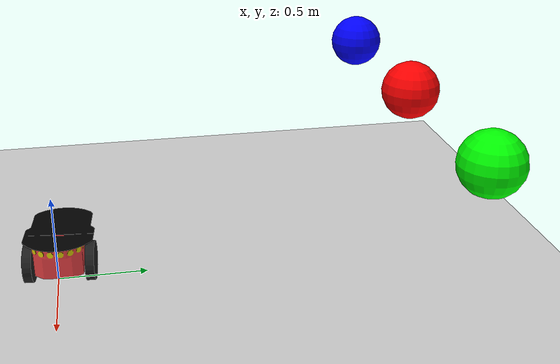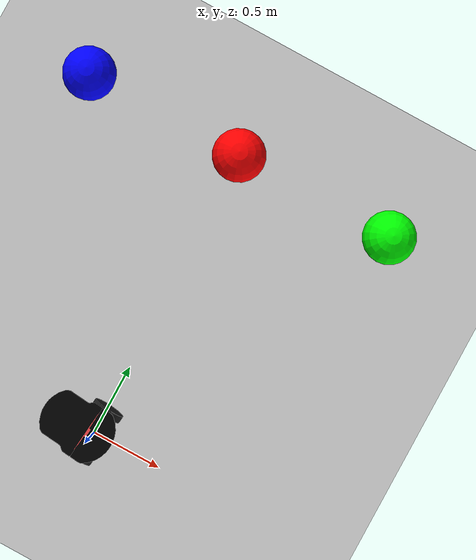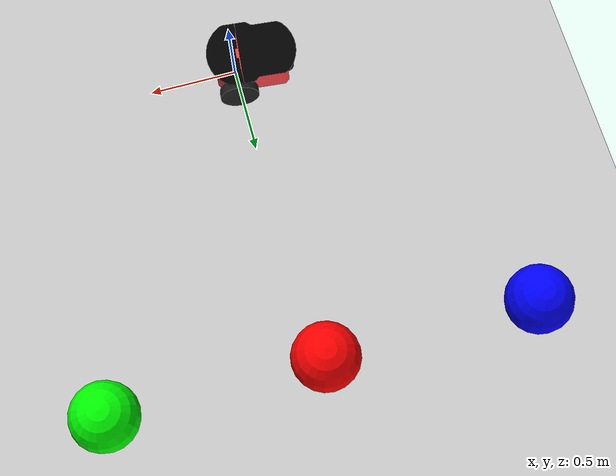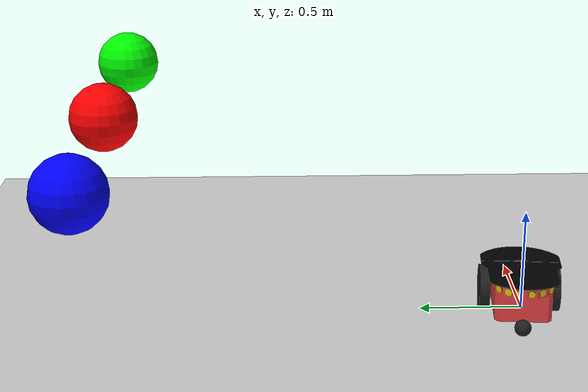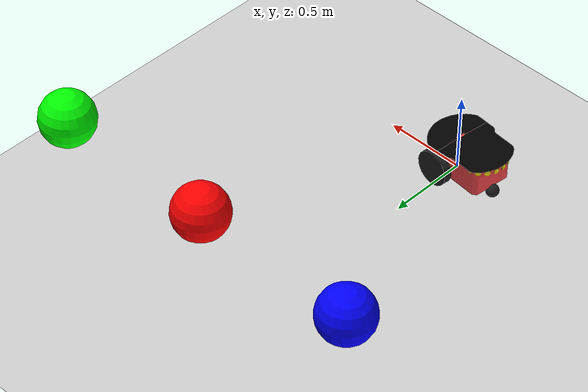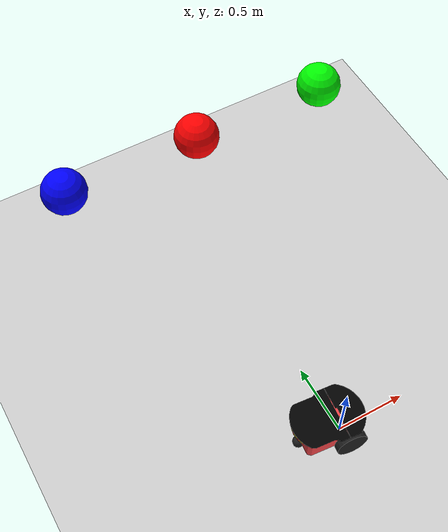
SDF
<sdf version="1.4">
 <world name="default">
  <light name="sun" type="directional">
   <pose>0 0 10 0 -0 0</pose>
   <diffuse>0.8 0.8 0.8 1</diffuse>
   <specular>0.2 0.2 0.2 1</specular>
   <attenuation>
    <range>1000</range>
    <constant>0.9</constant>
    <linear>0.01</linear>
    <quadratic>0.001</quadratic>
   </attenuation>
   <direction>-0.5 0.1 -0.9</direction>
  </light>
  <model name="ground_plane">
   <static>1</static>
   <link name="link">
    <collision name="collision">
     <geometry><plane><normal>0 0 1</normal><size>100 100</size></plane></geometry>
     <surface><friction><ode><mu>100</mu><mu2>50</mu2></ode></friction></surface>
    </collision>
    <visual name="visual">
     <cast_shadows>0</cast_shadows>
     <geometry><plane><normal>0 0 1</normal><size>100 100</size></plane></geometry>
     <material>
      <script><uri>file://media/materials/scripts/gazebo.material</uri><name>Gazebo/Grey</name></script>
     </material>
    </visual>
    <velocity_decay><linear>0</linear><angular>0</angular></velocity_decay>
   </link>
  </model>
  <model name="red_ball">
   <pose>0 2 1 0 0 0</pose>
   <link name="main">
    <visual name="ball_visual">
     <geometry><sphere><radius>0.16</radius></sphere></geometry>
     <material>
      <ambient>1 0 0 1</ambient>
      <diffuse>1 0 0 1</diffuse>
      <specular>0.1 0.1 0.1 1</specular>
      <emissive>0 0 0 0</emissive>
     </material>
    </visual>
    <collision name="target_collision">
     <geometry><sphere><radius>.16</radius></sphere></geometry>
     <surface><friction><ode><mu>0</mu><mu2>0</mu2><slip1>1.0</slip1><slip2>1.0</slip2></ode></friction></surface>
    </collision>
   </link>
  </model>
  <model name="green_ball">
   <pose>1 2 1 0 0 0</pose>
   <link name="main">
    <visual name="green_visual">
     <geometry><sphere><radius>0.16</radius></sphere></geometry>
     <material>
      <ambient>0 1 0 1</ambient>
      <diffuse>0 1 0 1</diffuse>
      <specular>0.1 0.1 0.1 1</specular>
      <emissive>0 0 0 0</emissive>
     </material>
    </visual>
    <collision name="green_collision">
     <geometry><sphere><radius>.16</radius></sphere></geometry>
     <surface><friction><ode><mu>0</mu><mu2>0</mu2><slip1>1.0</slip1><slip2>1.0</slip2></ode></friction></surface>
    </collision>
   </link>
  </model>
  <model name="blue_ball">
   <pose>-1 2 1 0 0 0</pose>
   <link name="main">
    <visual name="blue_visual">
     <geometry><sphere><radius>0.16</radius></sphere></geometry>
     <material>
      <ambient>0 0 1 1</ambient>
      <diffuse>0 0 1 1</diffuse>
      <specular>0.1 0.1 0.1 1</specular>
      <emissive>0 0 0 0</emissive>
     </material>
    </visual>
    <collision name="blue_collision">
     <geometry><sphere><radius>.16</radius></sphere></geometry>
     <surface><friction><ode><mu>0</mu><mu2>0</mu2><slip1>1.0</slip1><slip2>1.0</slip2></ode></friction></surface>
    </collision>
   </link>
  </model>
  <physics type="ode">
   <max_step_size>0.001</max_step_size>
   <real_time_factor>1</real_time_factor>
   <real_time_update_rate>1000</real_time_update_rate>
   <gravity>0 0 -9.8</gravity>
  </physics>
  <scene><ambient>0.4 0.4 0.4 1</ambient><background>0.7 0.7 0.7 1</background><shadows>1</shadows></scene>
  <spherical_coordinates>
   <surface_model>EARTH_WGS84</surface_model>
   <latitude_deg>0</latitude_deg>
   <longitude_deg>0</longitude_deg>
   <elevation>0</elevation>
   <heading_deg>0</heading_deg>
  </spherical_coordinates>
  <model name="pioneer2dx">
   <link name="chassis">
    <pose>0 0 0.16 0 -0 0</pose>
    <inertial>
     <mass>5.67</mass>
     <inertia><ixx>0.07</ixx><iyy>0.08</iyy><izz>0.1</izz><ixy>0</ixy><ixz>0</ixz><iyz>0</iyz></inertia>
    </inertial>
    <collision name="collision"><geometry><box><size>0.445 0.277 0.17</size></box></geometry></collision>
    <collision name="castor_collision">
     <pose>-0.2 0 -0.12 0 -0 0</pose>
     <geometry><sphere><radius>0.04</radius></sphere></geometry>
     <surface><friction><ode><mu>0</mu><mu2>0</mu2><slip1>1</slip1><slip2>1</slip2></ode></friction></surface>
    </collision>
    <visual name="visual">
     <pose>0 0 0.04 0 -0 0</pose>
     <geometry><mesh><uri>model://pioneer2dx/meshes/chassis.dae</uri></mesh></geometry>
    </visual>
    <visual name="castor_visual">
     <pose>-0.2 0 -0.12 0 -0 0</pose>
     <geometry><sphere><radius>0.04</radius></sphere></geometry>
     <material>
      <script><uri>file://media/materials/scripts/gazebo.material</uri><name>Gazebo/FlatBlack</name></script>
     </material>
    </visual>
    <velocity_decay><linear>0</linear><angular>0</angular></velocity_decay>
   </link>
   <link name="right_wheel">
    <pose>0.1 -0.17 0.11 0 1.5707 1.5707</pose>
    <inertial>
     <mass>1.5</mass>
     <inertia><ixx>0.0051</ixx><iyy>0.0051</iyy><izz>0.009</izz><ixy>0</ixy><ixz>0</ixz><iyz>0</iyz></inertia>
    </inertial>
    <collision name="collision">
     <geometry><cylinder><radius>0.11</radius><length>0.05</length></cylinder></geometry>
     <surface>
      <friction><ode><mu>100000</mu><mu2>100000</mu2><slip1>0</slip1><slip2>0</slip2></ode></friction>
     </surface>
    </collision>
    <visual name="visual">
     <geometry><cylinder><radius>0.11</radius><length>0.05</length></cylinder></geometry>
     <material>
      <script><uri>file://media/materials/scripts/gazebo.material</uri><name>Gazebo/FlatBlack</name></script>
     </material>
    </visual>
    <velocity_decay><linear>0</linear><angular>0</angular></velocity_decay>
   </link>
   <link name="left_wheel">
    <pose>0.1 0.17 0.11 0 1.5707 1.5707</pose>
    <inertial>
     <mass>1.5</mass>
     <inertia><ixx>0.0051</ixx><iyy>0.0051</iyy><izz>0.009</izz><ixy>0</ixy><ixz>0</ixz><iyz>0</iyz></inertia>
    </inertial>
    <collision name="collision">
     <geometry><cylinder><radius>0.11</radius><length>0.05</length></cylinder></geometry>
     <surface>
      <friction><ode><mu>100000</mu><mu2>100000</mu2><slip1>0</slip1><slip2>0</slip2></ode></friction>
     </surface>
    </collision>
    <visual name="visual">
     <geometry><cylinder><radius>0.11</radius><length>0.05</length></cylinder></geometry>
     <material>
      <script><uri>file://media/materials/scripts/gazebo.material</uri><name>Gazebo/FlatBlack</name></script>
     </material>
    </visual>
    <velocity_decay><linear>0</linear><angular>0</angular></velocity_decay>
   </link>
   <joint name="left_wheel_hinge" type="revolute">
    <pose>0 0 -0.03 0 -0 0</pose>
    <child>left_wheel</child>
    <parent>chassis</parent>
    <axis><xyz>0 1 0</xyz><limit><lower>-1e+16</lower><upper>1e+16</upper></limit></axis>
   </joint>
   <joint name="right_wheel_hinge" type="revolute">
    <pose>0 0 0.03 0 -0 0</pose>
    <child>right_wheel</child>
    <parent>chassis</parent>
    <axis><xyz>0 1 0</xyz><limit><lower>-1e+16</lower><upper>1e+16</upper></limit></axis>
   </joint>
   <plugin name="differential_drive_controller" filename="libgazebo_ros_diff_drive.so">
    <alwaysOn>true</alwaysOn>
    <updateRate>100</updateRate>
    <leftJoint>left_wheel_hinge</leftJoint>
    <rightJoint>right_wheel_hinge</rightJoint>
    <wheelSeparation>0.39</wheelSeparation>
    <wheelDiameter>0.15</wheelDiameter>
    <torque>5</torque>
    <commandTopic>cmd_vel</commandTopic>
    <odometryTopic>odom</odometryTopic>
    <odometryFrame>odom</odometryFrame>
    <robotBaseFrame>chassis</robotBaseFrame>
    <legacyMode>false</legacyMode>
   </plugin>
   <pose>-0.103826 0.027961 2e-06 -2e-06 -8e-06 -0.094162</pose>
   <static>0</static>
  </model>
 </world>
</sdf>
